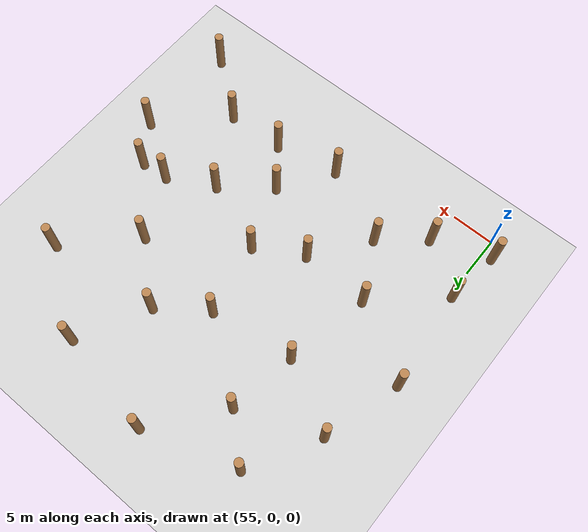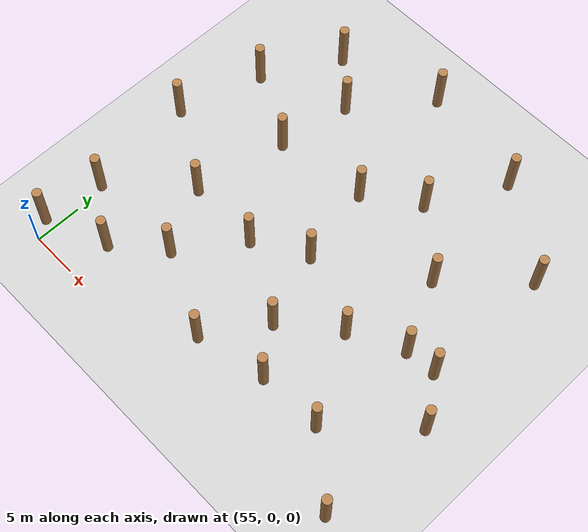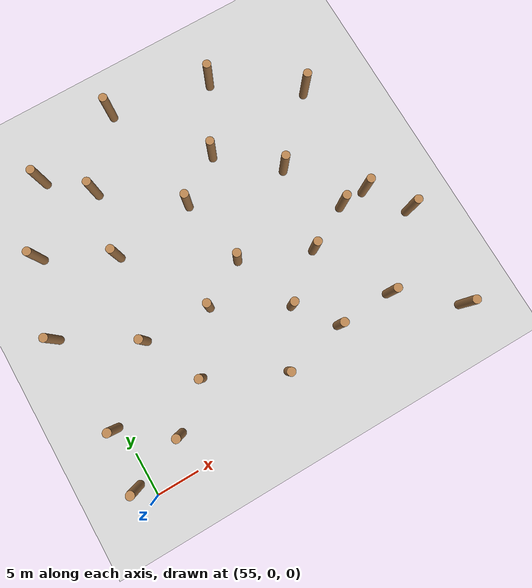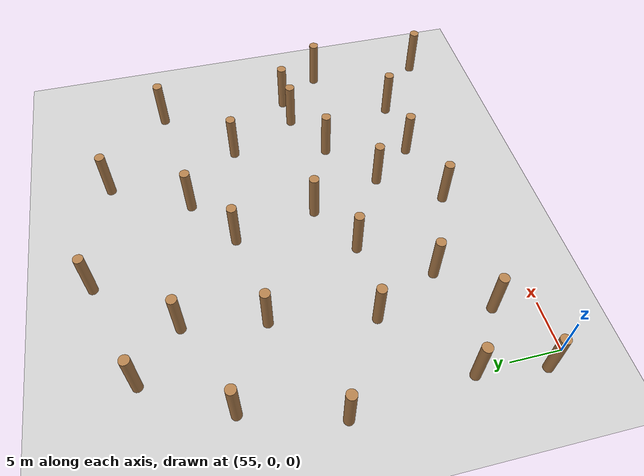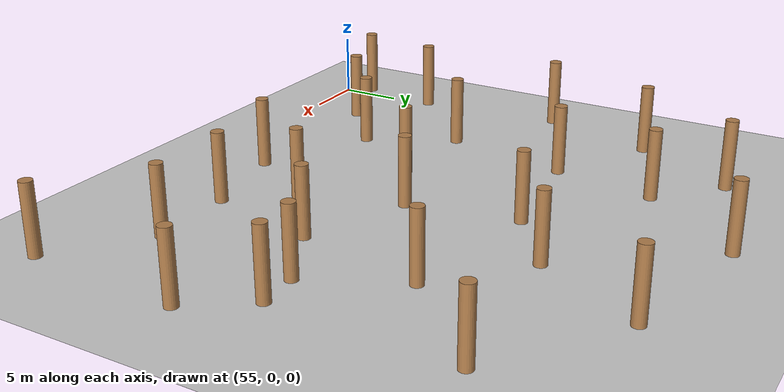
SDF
<sdf version="1.6">
 <world name="default">
  <model name="ground_plane">
   <static>1</static>
   <link name="link">
    <collision name="collision">
     <geometry><plane><normal>0 0 1</normal><size>100 100</size></plane></geometry>
     <surface><friction><ode><mu>100</mu><mu2>50</mu2></ode></friction></surface>
    </collision>
    <visual name="visual">
     <cast_shadows>0</cast_shadows>
     <geometry><plane><normal>0 0 1</normal><size>100 100</size></plane></geometry>
     <material>
      <script><uri>file://media/materials/scripts/gazebo.material</uri><name>Gazebo/Grey</name></script>
     </material>
    </visual>
   </link>
  </model>
  <model name="WoodPillars_3">
   <link name="link">
    <inertial>
     <mass>1</mass>
     <inertia><ixx>0.145833</ixx><ixy>0</ixy><ixz>0</ixz><iyy>0.145833</iyy><iyz>0</iyz><izz>0.125</izz></inertia>
    </inertial>
    <visual name="visual">
     <geometry><cylinder><radius>0.5</radius><length>5.50507</length></cylinder></geometry>
     <material>
      <script><name>Gazebo/Wood</name><uri>file://media/materials/scripts/gazebo.material</uri></script>
     </material>
    </visual>
    <collision name="collision">
     <geometry><cylinder><radius>0.5</radius><length>5.50507</length></cylinder></geometry>
     <surface>
      <friction>
       <ode><mu>1</mu><mu2>1</mu2><fdir1>0 0 0</fdir1><slip1>0</slip1><slip2>0</slip2></ode>
       <torsional>
        <coefficient>1</coefficient>
        <patch_radius>0</patch_radius>
        <surface_radius>0</surface_radius>
        <use_patch_radius>1</use_patch_radius>
        <ode><slip>0</slip></ode>
       </torsional>
      </friction>
      <bounce><restitution_coefficient>0</restitution_coefficient><threshold>1e+06</threshold></bounce>
      <contact>
       <collide_without_contact>0</collide_without_contact>
       <collide_without_contact_bitmask>1</collide_without_contact_bitmask>
       <collide_bitmask>1</collide_bitmask>
       <ode>
        <soft_cfm>0</soft_cfm>
        <soft_erp>0.2</soft_erp>
        <kp>1e+13</kp>
        <kd>1</kd>
        <max_vel>0.01</max_vel>
        <min_depth>0</min_depth>
       </ode>
       <bullet>
        <split_impulse>1</split_impulse>
        <split_impulse_penetration_threshold>-0.01</split_impulse_penetration_threshold>
        <soft_cfm>0</soft_cfm>
        <soft_erp>0.2</soft_erp>
        <kp>1e+13</kp>
        <kd>1</kd>
       </bullet>
      </contact>
     </surface>
    </collision>
   </link>
   <link name="link_clone">
    <inertial>
     <mass>1</mass>
     <inertia><ixx>0.145833</ixx><ixy>0</ixy><ixz>0</ixz><iyy>0.145833</iyy><iyz>0</iyz><izz>0.125</izz></inertia>
    </inertial>
    <pose>17.6954 -2.91348 -2e-06 0 -0 -0.001289</pose>
    <visual name="visual">
     <geometry><cylinder><radius>0.5</radius><length>5.50507</length></cylinder></geometry>
     <material>
      <script><name>Gazebo/Wood</name><uri>file://media/materials/scripts/gazebo.material</uri></script>
      <shader type="pixel"/>
     </material>
    </visual>
    <collision name="collision">
     <geometry><cylinder><radius>0.5</radius><length>5.50507</length></cylinder></geometry>
     <surface>
      <friction>
       <ode><mu>1</mu><mu2>1</mu2><fdir1>0 0 0</fdir1><slip1>0</slip1><slip2>0</slip2></ode>
       <torsional>
        <coefficient>1</coefficient>
        <patch_radius>0</patch_radius>
        <surface_radius>0</surface_radius>
        <use_patch_radius>1</use_patch_radius>
        <ode><slip>0</slip></ode>
       </torsional>
      </friction>
      <bounce><restitution_coefficient>0</restitution_coefficient><threshold>1e+06</threshold></bounce>
      <contact>
       <collide_without_contact>0</collide_without_contact>
       <collide_without_contact_bitmask>1</collide_without_contact_bitmask>
       <collide_bitmask>1</collide_bitmask>
       <ode>
        <soft_cfm>0</soft_cfm>
        <soft_erp>0.2</soft_erp>
        <kp>1e+13</kp>
        <kd>1</kd>
        <max_vel>0.01</max_vel>
        <min_depth>0</min_depth>
       </ode>
       <bullet>
        <split_impulse>1</split_impulse>
        <split_impulse_penetration_threshold>-0.01</split_impulse_penetration_threshold>
        <soft_cfm>0</soft_cfm>
        <soft_erp>0.2</soft_erp>
        <kp>1e+13</kp>
        <kd>1</kd>
       </bullet>
      </contact>
     </surface>
    </collision>
   </link>
   <link name="link_clone_12">
    <inertial>
     <mass>1</mass>
     <inertia><ixx>0.145833</ixx><ixy>0</ixy><ixz>0</ixz><iyy>0.145833</iyy><iyz>0</iyz><izz>0.125</izz></inertia>
    </inertial>
    <pose>36.6063 2.3916 -3e-06 0 -0 -0.001289</pose>
    <visual name="visual">
     <geometry><cylinder><radius>0.5</radius><length>5.50507</length></cylinder></geometry>
     <material>
      <script><name>Gazebo/Wood</name><uri>file://media/materials/scripts/gazebo.material</uri></script>
      <shader type="pixel"/>
     </material>
    </visual>
    <collision name="collision">
     <geometry><cylinder><radius>0.5</radius><length>5.50507</length></cylinder></geometry>
     <surface>
      <friction>
       <ode><mu>1</mu><mu2>1</mu2><fdir1>0 0 0</fdir1><slip1>0</slip1><slip2>0</slip2></ode>
       <torsional>
        <coefficient>1</coefficient>
        <patch_radius>0</patch_radius>
        <surface_radius>0</surface_radius>
        <use_patch_radius>1</use_patch_radius>
        <ode><slip>0</slip></ode>
       </torsional>
      </friction>
      <bounce><restitution_coefficient>0</restitution_coefficient><threshold>1e+06</threshold></bounce>
      <contact>
       <collide_without_contact>0</collide_without_contact>
       <collide_without_contact_bitmask>1</collide_without_contact_bitmask>
       <collide_bitmask>1</collide_bitmask>
       <ode>
        <soft_cfm>0</soft_cfm>
        <soft_erp>0.2</soft_erp>
        <kp>1e+13</kp>
        <kd>1</kd>
        <max_vel>0.01</max_vel>
        <min_depth>0</min_depth>
       </ode>
       <bullet>
        <split_impulse>1</split_impulse>
        <split_impulse_penetration_threshold>-0.01</split_impulse_penetration_threshold>
        <soft_cfm>0</soft_cfm>
        <soft_erp>0.2</soft_erp>
        <kp>1e+13</kp>
        <kd>1</kd>
       </bullet>
      </contact>
     </surface>
    </collision>
   </link>
   <link name="link_clone_13">
    <inertial>
     <mass>1</mass>
     <inertia><ixx>0.145833</ixx><ixy>0</ixy><ixz>0</ixz><iyy>0.145833</iyy><iyz>0</iyz><izz>0.125</izz></inertia>
    </inertial>
    <pose>32.2715 -23.3528 -3e-06 0 -0 -0.001289</pose>
    <visual name="visual">
     <geometry><cylinder><radius>0.5</radius><length>5.50507</length></cylinder></geometry>
     <material>
      <script><name>Gazebo/Wood</name><uri>file://media/materials/scripts/gazebo.material</uri></script>
      <shader type="pixel"/>
     </material>
    </visual>
    <collision name="collision">
     <geometry><cylinder><radius>0.5</radius><length>5.50507</length></cylinder></geometry>
     <surface>
      <friction>
       <ode><mu>1</mu><mu2>1</mu2><fdir1>0 0 0</fdir1><slip1>0</slip1><slip2>0</slip2></ode>
       <torsional>
        <coefficient>1</coefficient>
        <patch_radius>0</patch_radius>
        <surface_radius>0</surface_radius>
        <use_patch_radius>1</use_patch_radius>
        <ode><slip>0</slip></ode>
       </torsional>
      </friction>
      <bounce><restitution_coefficient>0</restitution_coefficient><threshold>1e+06</threshold></bounce>
      <contact>
       <collide_without_contact>0</collide_without_contact>
       <collide_without_contact_bitmask>1</collide_without_contact_bitmask>
       <collide_bitmask>1</collide_bitmask>
       <ode>
        <soft_cfm>0</soft_cfm>
        <soft_erp>0.2</soft_erp>
        <kp>1e+13</kp>
        <kd>1</kd>
        <max_vel>0.01</max_vel>
        <min_depth>0</min_depth>
       </ode>
       <bullet>
        <split_impulse>1</split_impulse>
        <split_impulse_penetration_threshold>-0.01</split_impulse_penetration_threshold>
        <soft_cfm>0</soft_cfm>
        <soft_erp>0.2</soft_erp>
        <kp>1e+13</kp>
        <kd>1</kd>
       </bullet>
      </contact>
     </surface>
    </collision>
   </link>
   <link name="link_clone_14">
    <inertial>
     <mass>1</mass>
     <inertia><ixx>0.145833</ixx><ixy>0</ixy><ixz>0</ixz><iyy>0.145833</iyy><iyz>0</iyz><izz>0.125</izz></inertia>
    </inertial>
    <pose>9.31461 -20.9997 -1e-06 0 -0 -0.001289</pose>
    <visual name="visual">
     <geometry><cylinder><radius>0.5</radius><length>5.50507</length></cylinder></geometry>
     <material>
      <script><name>Gazebo/Wood</name><uri>file://media/materials/scripts/gazebo.material</uri></script>
      <shader type="pixel"/>
     </material>
    </visual>
    <collision name="collision">
     <geometry><cylinder><radius>0.5</radius><length>5.50507</length></cylinder></geometry>
     <surface>
      <friction>
       <ode><mu>1</mu><mu2>1</mu2><fdir1>0 0 0</fdir1><slip1>0</slip1><slip2>0</slip2></ode>
       <torsional>
        <coefficient>1</coefficient>
        <patch_radius>0</patch_radius>
        <surface_radius>0</surface_radius>
        <use_patch_radius>1</use_patch_radius>
        <ode><slip>0</slip></ode>
       </torsional>
      </friction>
      <bounce><restitution_coefficient>0</restitution_coefficient><threshold>1e+06</threshold></bounce>
      <contact>
       <collide_without_contact>0</collide_without_contact>
       <collide_without_contact_bitmask>1</collide_without_contact_bitmask>
       <collide_bitmask>1</collide_bitmask>
       <ode>
        <soft_cfm>0</soft_cfm>
        <soft_erp>0.2</soft_erp>
        <kp>1e+13</kp>
        <kd>1</kd>
        <max_vel>0.01</max_vel>
        <min_depth>0</min_depth>
       </ode>
       <bullet>
        <split_impulse>1</split_impulse>
        <split_impulse_penetration_threshold>-0.01</split_impulse_penetration_threshold>
        <soft_cfm>0</soft_cfm>
        <soft_erp>0.2</soft_erp>
        <kp>1e+13</kp>
        <kd>1</kd>
       </bullet>
      </contact>
     </surface>
    </collision>
   </link>
   <link name="link_clone_15">
    <inertial>
     <mass>1</mass>
     <inertia><ixx>0.145833</ixx><ixy>0</ixy><ixz>0</ixz><iyy>0.145833</iyy><iyz>0</iyz><izz>0.125</izz></inertia>
    </inertial>
    <pose>17.9894 -25.1945 -2e-06 0 -0 -0.001289</pose>
    <visual name="visual">
     <geometry><cylinder><radius>0.5</radius><length>5.50507</length></cylinder></geometry>
     <material>
      <script><name>Gazebo/Wood</name><uri>file://media/materials/scripts/gazebo.material</uri></script>
      <shader type="pixel"/>
     </material>
    </visual>
    <collision name="collision">
     <geometry><cylinder><radius>0.5</radius><length>5.50507</length></cylinder></geometry>
     <surface>
      <friction>
       <ode><mu>1</mu><mu2>1</mu2><fdir1>0 0 0</fdir1><slip1>0</slip1><slip2>0</slip2></ode>
       <torsional>
        <coefficient>1</coefficient>
        <patch_radius>0</patch_radius>
        <surface_radius>0</surface_radius>
        <use_patch_radius>1</use_patch_radius>
        <ode><slip>0</slip></ode>
       </torsional>
      </friction>
      <bounce><restitution_coefficient>0</restitution_coefficient><threshold>1e+06</threshold></bounce>
      <contact>
       <collide_without_contact>0</collide_without_contact>
       <collide_without_contact_bitmask>1</collide_without_contact_bitmask>
       <collide_bitmask>1</collide_bitmask>
       <ode>
        <soft_cfm>0</soft_cfm>
        <soft_erp>0.2</soft_erp>
        <kp>1e+13</kp>
        <kd>1</kd>
        <max_vel>0.01</max_vel>
        <min_depth>0</min_depth>
       </ode>
       <bullet>
        <split_impulse>1</split_impulse>
        <split_impulse_penetration_threshold>-0.01</split_impulse_penetration_threshold>
        <soft_cfm>0</soft_cfm>
        <soft_erp>0.2</soft_erp>
        <kp>1e+13</kp>
        <kd>1</kd>
       </bullet>
      </contact>
     </surface>
    </collision>
   </link>
   <link name="link_clone_16">
    <inertial>
     <mass>1</mass>
     <inertia><ixx>0.145833</ixx><ixy>0</ixy><ixz>0</ixz><iyy>0.145833</iyy><iyz>0</iyz><izz>0.125</izz></inertia>
    </inertial>
    <pose>32.9662 -11.9429 -3e-06 0 -0 -0.001289</pose>
    <visual name="visual">
     <geometry><cylinder><radius>0.5</radius><length>5.50507</length></cylinder></geometry>
     <material>
      <script><name>Gazebo/Wood</name><uri>file://media/materials/scripts/gazebo.material</uri></script>
      <shader type="pixel"/>
     </material>
    </visual>
    <collision name="collision">
     <geometry><cylinder><radius>0.5</radius><length>5.50507</length></cylinder></geometry>
     <surface>
      <friction>
       <ode><mu>1</mu><mu2>1</mu2><fdir1>0 0 0</fdir1><slip1>0</slip1><slip2>0</slip2></ode>
       <torsional>
        <coefficient>1</coefficient>
        <patch_radius>0</patch_radius>
        <surface_radius>0</surface_radius>
        <use_patch_radius>1</use_patch_radius>
        <ode><slip>0</slip></ode>
       </torsional>
      </friction>
      <bounce><restitution_coefficient>0</restitution_coefficient><threshold>1e+06</threshold></bounce>
      <contact>
       <collide_without_contact>0</collide_without_contact>
       <collide_without_contact_bitmask>1</collide_without_contact_bitmask>
       <collide_bitmask>1</collide_bitmask>
       <ode>
        <soft_cfm>0</soft_cfm>
        <soft_erp>0.2</soft_erp>
        <kp>1e+13</kp>
        <kd>1</kd>
        <max_vel>0.01</max_vel>
        <min_depth>0</min_depth>
       </ode>
       <bullet>
        <split_impulse>1</split_impulse>
        <split_impulse_penetration_threshold>-0.01</split_impulse_penetration_threshold>
        <soft_cfm>0</soft_cfm>
        <soft_erp>0.2</soft_erp>
        <kp>1e+13</kp>
        <kd>1</kd>
       </bullet>
      </contact>
     </surface>
    </collision>
   </link>
   <link name="link_clone_17">
    <inertial>
     <mass>1</mass>
     <inertia><ixx>0.145833</ixx><ixy>0</ixy><ixz>0</ixz><iyy>0.145833</iyy><iyz>0</iyz><izz>0.125</izz></inertia>
    </inertial>
    <pose>19.3784 -11.4604 -2e-06 0 -0 -0.001289</pose>
    <visual name="visual">
     <geometry><cylinder><radius>0.5</radius><length>5.50507</length></cylinder></geometry>
     <material>
      <script><name>Gazebo/Wood</name><uri>file://media/materials/scripts/gazebo.material</uri></script>
      <shader type="pixel"/>
     </material>
    </visual>
    <collision name="collision">
     <geometry><cylinder><radius>0.5</radius><length>5.50507</length></cylinder></geometry>
     <surface>
      <friction>
       <ode><mu>1</mu><mu2>1</mu2><fdir1>0 0 0</fdir1><slip1>0</slip1><slip2>0</slip2></ode>
       <torsional>
        <coefficient>1</coefficient>
        <patch_radius>0</patch_radius>
        <surface_radius>0</surface_radius>
        <use_patch_radius>1</use_patch_radius>
        <ode><slip>0</slip></ode>
       </torsional>
      </friction>
      <bounce><restitution_coefficient>0</restitution_coefficient><threshold>1e+06</threshold></bounce>
      <contact>
       <collide_without_contact>0</collide_without_contact>
       <collide_without_contact_bitmask>1</collide_without_contact_bitmask>
       <collide_bitmask>1</collide_bitmask>
       <ode>
        <soft_cfm>0</soft_cfm>
        <soft_erp>0.2</soft_erp>
        <kp>1e+13</kp>
        <kd>1</kd>
        <max_vel>0.01</max_vel>
        <min_depth>0</min_depth>
       </ode>
       <bullet>
        <split_impulse>1</split_impulse>
        <split_impulse_penetration_threshold>-0.01</split_impulse_penetration_threshold>
        <soft_cfm>0</soft_cfm>
        <soft_erp>0.2</soft_erp>
        <kp>1e+13</kp>
        <kd>1</kd>
       </bullet>
      </contact>
     </surface>
    </collision>
   </link>
   <link name="link_clone_18">
    <inertial>
     <mass>1</mass>
     <inertia><ixx>0.145833</ixx><ixy>0</ixy><ixz>0</ixz><iyy>0.145833</iyy><iyz>0</iyz><izz>0.125</izz></inertia>
    </inertial>
    <pose>9.1573 3.67739 -1e-06 0 -0 -0.001289</pose>
    <visual name="visual">
     <geometry><cylinder><radius>0.5</radius><length>5.50507</length></cylinder></geometry>
     <material>
      <script><name>Gazebo/Wood</name><uri>file://media/materials/scripts/gazebo.material</uri></script>
      <shader type="pixel"/>
     </material>
    </visual>
    <collision name="collision">
     <geometry><cylinder><radius>0.5</radius><length>5.50507</length></cylinder></geometry>
     <surface>
      <friction>
       <ode><mu>1</mu><mu2>1</mu2><fdir1>0 0 0</fdir1><slip1>0</slip1><slip2>0</slip2></ode>
       <torsional>
        <coefficient>1</coefficient>
        <patch_radius>0</patch_radius>
        <surface_radius>0</surface_radius>
        <use_patch_radius>1</use_patch_radius>
        <ode><slip>0</slip></ode>
       </torsional>
      </friction>
      <bounce><restitution_coefficient>0</restitution_coefficient><threshold>1e+06</threshold></bounce>
      <contact>
       <collide_without_contact>0</collide_without_contact>
       <collide_without_contact_bitmask>1</collide_without_contact_bitmask>
       <collide_bitmask>1</collide_bitmask>
       <ode>
        <soft_cfm>0</soft_cfm>
        <soft_erp>0.2</soft_erp>
        <kp>1e+13</kp>
        <kd>1</kd>
        <max_vel>0.01</max_vel>
        <min_depth>0</min_depth>
       </ode>
       <bullet>
        <split_impulse>1</split_impulse>
        <split_impulse_penetration_threshold>-0.01</split_impulse_penetration_threshold>
        <soft_cfm>0</soft_cfm>
        <soft_erp>0.2</soft_erp>
        <kp>1e+13</kp>
        <kd>1</kd>
       </bullet>
      </contact>
     </surface>
    </collision>
   </link>
   <link name="link_clone_20">
    <inertial>
     <mass>1</mass>
     <inertia><ixx>0.145833</ixx><ixy>0</ixy><ixz>0</ixz><iyy>0.145833</iyy><iyz>0</iyz><izz>0.125</izz></inertia>
    </inertial>
    <pose>-2.64423 -9.12396 -0 0 -0 -0.001289</pose>
    <visual name="visual">
     <geometry><cylinder><radius>0.5</radius><length>5.50507</length></cylinder></geometry>
     <material>
      <script><name>Gazebo/Wood</name><uri>file://media/materials/scripts/gazebo.material</uri></script>
      <shader type="pixel"/>
     </material>
    </visual>
    <collision name="collision">
     <geometry><cylinder><radius>0.5</radius><length>5.50507</length></cylinder></geometry>
     <surface>
      <friction>
       <ode><mu>1</mu><mu2>1</mu2><fdir1>0 0 0</fdir1><slip1>0</slip1><slip2>0</slip2></ode>
       <torsional>
        <coefficient>1</coefficient>
        <patch_radius>0</patch_radius>
        <surface_radius>0</surface_radius>
        <use_patch_radius>1</use_patch_radius>
        <ode><slip>0</slip></ode>
       </torsional>
      </friction>
      <bounce><restitution_coefficient>0</restitution_coefficient><threshold>1e+06</threshold></bounce>
      <contact>
       <collide_without_contact>0</collide_without_contact>
       <collide_without_contact_bitmask>1</collide_without_contact_bitmask>
       <collide_bitmask>1</collide_bitmask>
       <ode>
        <soft_cfm>0</soft_cfm>
        <soft_erp>0.2</soft_erp>
        <kp>1e+13</kp>
        <kd>1</kd>
        <max_vel>0.01</max_vel>
        <min_depth>0</min_depth>
       </ode>
       <bullet>
        <split_impulse>1</split_impulse>
        <split_impulse_penetration_threshold>-0.01</split_impulse_penetration_threshold>
        <soft_cfm>0</soft_cfm>
        <soft_erp>0.2</soft_erp>
        <kp>1e+13</kp>
        <kd>1</kd>
       </bullet>
      </contact>
     </surface>
    </collision>
   </link>
   <link name="link_clone_21">
    <inertial>
     <mass>1</mass>
     <inertia><ixx>0.145833</ixx><ixy>0</ixy><ixz>0</ixz><iyy>0.145833</iyy><iyz>0</iyz><izz>0.125</izz></inertia>
    </inertial>
    <pose>15.2748 11.406 -1e-06 0 -0 -0.001289</pose>
    <visual name="visual">
     <geometry><cylinder><radius>0.5</radius><length>5.50507</length></cylinder></geometry>
     <material>
      <script><name>Gazebo/Wood</name><uri>file://media/materials/scripts/gazebo.material</uri></script>
      <shader type="pixel"/>
     </material>
    </visual>
    <collision name="collision">
     <geometry><cylinder><radius>0.5</radius><length>5.50507</length></cylinder></geometry>
     <surface>
      <friction>
       <ode><mu>1</mu><mu2>1</mu2><fdir1>0 0 0</fdir1><slip1>0</slip1><slip2>0</slip2></ode>
       <torsional>
        <coefficient>1</coefficient>
        <patch_radius>0</patch_radius>
        <surface_radius>0</surface_radius>
        <use_patch_radius>1</use_patch_radius>
        <ode><slip>0</slip></ode>
       </torsional>
      </friction>
      <bounce><restitution_coefficient>0</restitution_coefficient><threshold>1e+06</threshold></bounce>
      <contact>
       <collide_without_contact>0</collide_without_contact>
       <collide_without_contact_bitmask>1</collide_without_contact_bitmask>
       <collide_bitmask>1</collide_bitmask>
       <ode>
        <soft_cfm>0</soft_cfm>
        <soft_erp>0.2</soft_erp>
        <kp>1e+13</kp>
        <kd>1</kd>
        <max_vel>0.01</max_vel>
        <min_depth>0</min_depth>
       </ode>
       <bullet>
        <split_impulse>1</split_impulse>
        <split_impulse_penetration_threshold>-0.01</split_impulse_penetration_threshold>
        <soft_cfm>0</soft_cfm>
        <soft_erp>0.2</soft_erp>
        <kp>1e+13</kp>
        <kd>1</kd>
       </bullet>
      </contact>
     </surface>
    </collision>
   </link>
   <link name="link_clone_22">
    <inertial>
     <mass>1</mass>
     <inertia><ixx>0.145833</ixx><ixy>0</ixy><ixz>0</ixz><iyy>0.145833</iyy><iyz>0</iyz><izz>0.125</izz></inertia>
    </inertial>
    <pose>27.313 9.05961 -2e-06 0 -0 -0.001289</pose>
    <visual name="visual">
     <geometry><cylinder><radius>0.5</radius><length>5.50507</length></cylinder></geometry>
     <material>
      <script><name>Gazebo/Wood</name><uri>file://media/materials/scripts/gazebo.material</uri></script>
      <shader type="pixel"/>
     </material>
    </visual>
    <collision name="collision">
     <geometry><cylinder><radius>0.5</radius><length>5.50507</length></cylinder></geometry>
     <surface>
      <friction>
       <ode><mu>1</mu><mu2>1</mu2><fdir1>0 0 0</fdir1><slip1>0</slip1><slip2>0</slip2></ode>
       <torsional>
        <coefficient>1</coefficient>
        <patch_radius>0</patch_radius>
        <surface_radius>0</surface_radius>
        <use_patch_radius>1</use_patch_radius>
        <ode><slip>0</slip></ode>
       </torsional>
      </friction>
      <bounce><restitution_coefficient>0</restitution_coefficient><threshold>1e+06</threshold></bounce>
      <contact>
       <collide_without_contact>0</collide_without_contact>
       <collide_without_contact_bitmask>1</collide_without_contact_bitmask>
       <collide_bitmask>1</collide_bitmask>
       <ode>
        <soft_cfm>0</soft_cfm>
        <soft_erp>0.2</soft_erp>
        <kp>1e+13</kp>
        <kd>1</kd>
        <max_vel>0.01</max_vel>
        <min_depth>0</min_depth>
       </ode>
       <bullet>
        <split_impulse>1</split_impulse>
        <split_impulse_penetration_threshold>-0.01</split_impulse_penetration_threshold>
        <soft_cfm>0</soft_cfm>
        <soft_erp>0.2</soft_erp>
        <kp>1e+13</kp>
        <kd>1</kd>
       </bullet>
      </contact>
     </surface>
    </collision>
   </link>
   <link name="link_clone_23">
    <inertial>
     <mass>1</mass>
     <inertia><ixx>0.145833</ixx><ixy>0</ixy><ixz>0</ixz><iyy>0.145833</iyy><iyz>0</iyz><izz>0.125</izz></inertia>
    </inertial>
    <pose>29.5176 -4.71623 -3e-06 0 -0 -0.001289</pose>
    <visual name="visual">
     <geometry><cylinder><radius>0.5</radius><length>5.50507</length></cylinder></geometry>
     <material>
      <script><name>Gazebo/Wood</name><uri>file://media/materials/scripts/gazebo.material</uri></script>
      <shader type="pixel"/>
     </material>
    </visual>
    <collision name="collision">
     <geometry><cylinder><radius>0.5</radius><length>5.50507</length></cylinder></geometry>
     <surface>
      <friction>
       <ode><mu>1</mu><mu2>1</mu2><fdir1>0 0 0</fdir1><slip1>0</slip1><slip2>0</slip2></ode>
       <torsional>
        <coefficient>1</coefficient>
        <patch_radius>0</patch_radius>
        <surface_radius>0</surface_radius>
        <use_patch_radius>1</use_patch_radius>
        <ode><slip>0</slip></ode>
       </torsional>
      </friction>
      <bounce><restitution_coefficient>0</restitution_coefficient><threshold>1e+06</threshold></bounce>
      <contact>
       <collide_without_contact>0</collide_without_contact>
       <collide_without_contact_bitmask>1</collide_without_contact_bitmask>
       <collide_bitmask>1</collide_bitmask>
       <ode>
        <soft_cfm>0</soft_cfm>
        <soft_erp>0.2</soft_erp>
        <kp>1e+13</kp>
        <kd>1</kd>
        <max_vel>0.01</max_vel>
        <min_depth>0</min_depth>
       </ode>
       <bullet>
        <split_impulse>1</split_impulse>
        <split_impulse_penetration_threshold>-0.01</split_impulse_penetration_threshold>
        <soft_cfm>0</soft_cfm>
        <soft_erp>0.2</soft_erp>
        <kp>1e+13</kp>
        <kd>1</kd>
       </bullet>
      </contact>
     </surface>
    </collision>
   </link>
   <link name="link_clone_24">
    <inertial>
     <mass>1</mass>
     <inertia><ixx>0.145833</ixx><ixy>0</ixy><ixz>0</ixz><iyy>0.145833</iyy><iyz>0</iyz><izz>0.125</izz></inertia>
    </inertial>
    <pose>7.84688 -4.26113 -1e-06 0 -0 -0.001289</pose>
    <visual name="visual">
     <geometry><cylinder><radius>0.5</radius><length>5.50507</length></cylinder></geometry>
     <material>
      <script><name>Gazebo/Wood</name><uri>file://media/materials/scripts/gazebo.material</uri></script>
      <shader type="pixel"/>
     </material>
    </visual>
    <collision name="collision">
     <geometry><cylinder><radius>0.5</radius><length>5.50507</length></cylinder></geometry>
     <surface>
      <friction>
       <ode><mu>1</mu><mu2>1</mu2><fdir1>0 0 0</fdir1><slip1>0</slip1><slip2>0</slip2></ode>
       <torsional>
        <coefficient>1</coefficient>
        <patch_radius>0</patch_radius>
        <surface_radius>0</surface_radius>
        <use_patch_radius>1</use_patch_radius>
        <ode><slip>0</slip></ode>
       </torsional>
      </friction>
      <bounce><restitution_coefficient>0</restitution_coefficient><threshold>1e+06</threshold></bounce>
      <contact>
       <collide_without_contact>0</collide_without_contact>
       <collide_without_contact_bitmask>1</collide_without_contact_bitmask>
       <collide_bitmask>1</collide_bitmask>
       <ode>
        <soft_cfm>0</soft_cfm>
        <soft_erp>0.2</soft_erp>
        <kp>1e+13</kp>
        <kd>1</kd>
        <max_vel>0.01</max_vel>
        <min_depth>0</min_depth>
       </ode>
       <bullet>
        <split_impulse>1</split_impulse>
        <split_impulse_penetration_threshold>-0.01</split_impulse_penetration_threshold>
        <soft_cfm>0</soft_cfm>
        <soft_erp>0.2</soft_erp>
        <kp>1e+13</kp>
        <kd>1</kd>
       </bullet>
      </contact>
     </surface>
    </collision>
   </link>
   <link name="link_clone_26">
    <inertial>
     <mass>1</mass>
     <inertia><ixx>0.145833</ixx><ixy>0</ixy><ixz>0</ixz><iyy>0.145833</iyy><iyz>0</iyz><izz>0.125</izz></inertia>
    </inertial>
    <pose>13.9187 -14.5508 -1e-06 0 -0 -0.001289</pose>
    <visual name="visual">
     <geometry><cylinder><radius>0.5</radius><length>5.50507</length></cylinder></geometry>
     <material>
      <script><name>Gazebo/Wood</name><uri>file://media/materials/scripts/gazebo.material</uri></script>
      <shader type="pixel"/>
     </material>
    </visual>
    <collision name="collision">
     <geometry><cylinder><radius>0.5</radius><length>5.50507</length></cylinder></geometry>
     <surface>
      <friction>
       <ode><mu>1</mu><mu2>1</mu2><fdir1>0 0 0</fdir1><slip1>0</slip1><slip2>0</slip2></ode>
       <torsional>
        <coefficient>1</coefficient>
        <patch_radius>0</patch_radius>
        <surface_radius>0</surface_radius>
        <use_patch_radius>1</use_patch_radius>
        <ode><slip>0</slip></ode>
       </torsional>
      </friction>
      <bounce><restitution_coefficient>0</restitution_coefficient><threshold>1e+06</threshold></bounce>
      <contact>
       <collide_without_contact>0</collide_without_contact>
       <collide_without_contact_bitmask>1</collide_without_contact_bitmask>
       <collide_bitmask>1</collide_bitmask>
       <ode>
        <soft_cfm>0</soft_cfm>
        <soft_erp>0.2</soft_erp>
        <kp>1e+13</kp>
        <kd>1</kd>
        <max_vel>0.01</max_vel>
        <min_depth>0</min_depth>
       </ode>
       <bullet>
        <split_impulse>1</split_impulse>
        <split_impulse_penetration_threshold>-0.01</split_impulse_penetration_threshold>
        <soft_cfm>0</soft_cfm>
        <soft_erp>0.2</soft_erp>
        <kp>1e+13</kp>
        <kd>1</kd>
       </bullet>
      </contact>
     </surface>
    </collision>
   </link>
   <link name="link_clone_27">
    <inertial>
     <mass>1</mass>
     <inertia><ixx>0.145833</ixx><ixy>0</ixy><ixz>0</ixz><iyy>0.145833</iyy><iyz>0</iyz><izz>0.125</izz></inertia>
    </inertial>
    <pose>4.38632 -25.0605 -1e-06 0 -0 -0.001289</pose>
    <visual name="visual">
     <geometry><cylinder><radius>0.5</radius><length>5.50507</length></cylinder></geometry>
     <material>
      <script><name>Gazebo/Wood</name><uri>file://media/materials/scripts/gazebo.material</uri></script>
      <shader type="pixel"/>
     </material>
    </visual>
    <collision name="collision">
     <geometry><cylinder><radius>0.5</radius><length>5.50507</length></cylinder></geometry>
     <surface>
      <friction>
       <ode><mu>1</mu><mu2>1</mu2><fdir1>0 0 0</fdir1><slip1>0</slip1><slip2>0</slip2></ode>
       <torsional>
        <coefficient>1</coefficient>
        <patch_radius>0</patch_radius>
        <surface_radius>0</surface_radius>
        <use_patch_radius>1</use_patch_radius>
        <ode><slip>0</slip></ode>
       </torsional>
      </friction>
      <bounce><restitution_coefficient>0</restitution_coefficient><threshold>1e+06</threshold></bounce>
      <contact>
       <collide_without_contact>0</collide_without_contact>
       <collide_without_contact_bitmask>1</collide_without_contact_bitmask>
       <collide_bitmask>1</collide_bitmask>
       <ode>
        <soft_cfm>0</soft_cfm>
        <soft_erp>0.2</soft_erp>
        <kp>1e+13</kp>
        <kd>1</kd>
        <max_vel>0.01</max_vel>
        <min_depth>0</min_depth>
       </ode>
       <bullet>
        <split_impulse>1</split_impulse>
        <split_impulse_penetration_threshold>-0.01</split_impulse_penetration_threshold>
        <soft_cfm>0</soft_cfm>
        <soft_erp>0.2</soft_erp>
        <kp>1e+13</kp>
        <kd>1</kd>
       </bullet>
      </contact>
     </surface>
    </collision>
   </link>
   <link name="link_clone_28">
    <inertial>
     <mass>1</mass>
     <inertia><ixx>0.145833</ixx><ixy>0</ixy><ixz>0</ixz><iyy>0.145833</iyy><iyz>0</iyz><izz>0.125</izz></inertia>
    </inertial>
    <pose>27.5353 -14.766 -3e-06 0 -0 -0.001289</pose>
    <visual name="visual">
     <geometry><cylinder><radius>0.5</radius><length>5.50507</length></cylinder></geometry>
     <material>
      <script><name>Gazebo/Wood</name><uri>file://media/materials/scripts/gazebo.material</uri></script>
      <shader type="pixel"/>
     </material>
    </visual>
    <collision name="collision">
     <geometry><cylinder><radius>0.5</radius><length>5.50507</length></cylinder></geometry>
     <surface>
      <friction>
       <ode><mu>1</mu><mu2>1</mu2><fdir1>0 0 0</fdir1><slip1>0</slip1><slip2>0</slip2></ode>
       <torsional>
        <coefficient>1</coefficient>
        <patch_radius>0</patch_radius>
        <surface_radius>0</surface_radius>
        <use_patch_radius>1</use_patch_radius>
        <ode><slip>0</slip></ode>
       </torsional>
      </friction>
      <bounce><restitution_coefficient>0</restitution_coefficient><threshold>1e+06</threshold></bounce>
      <contact>
       <collide_without_contact>0</collide_without_contact>
       <collide_without_contact_bitmask>1</collide_without_contact_bitmask>
       <collide_bitmask>1</collide_bitmask>
       <ode>
        <soft_cfm>0</soft_cfm>
        <soft_erp>0.2</soft_erp>
        <kp>1e+13</kp>
        <kd>1</kd>
        <max_vel>0.01</max_vel>
        <min_depth>0</min_depth>
       </ode>
       <bullet>
        <split_impulse>1</split_impulse>
        <split_impulse_penetration_threshold>-0.01</split_impulse_penetration_threshold>
        <soft_cfm>0</soft_cfm>
        <soft_erp>0.2</soft_erp>
        <kp>1e+13</kp>
        <kd>1</kd>
       </bullet>
      </contact>
     </surface>
    </collision>
   </link>
   <link name="link_clone_29">
    <inertial>
     <mass>1</mass>
     <inertia><ixx>0.145833</ixx><ixy>0</ixy><ixz>0</ixz><iyy>0.145833</iyy><iyz>0</iyz><izz>0.125</izz></inertia>
    </inertial>
    <pose>39.4401 -16.2696 -4e-06 0 -0 -0.001289</pose>
    <visual name="visual">
     <geometry><cylinder><radius>0.5</radius><length>5.50507</length></cylinder></geometry>
     <material>
      <script><name>Gazebo/Wood</name><uri>file://media/materials/scripts/gazebo.material</uri></script>
      <shader type="pixel"/>
     </material>
    </visual>
    <collision name="collision">
     <geometry><cylinder><radius>0.5</radius><length>5.50507</length></cylinder></geometry>
     <surface>
      <friction>
       <ode><mu>1</mu><mu2>1</mu2><fdir1>0 0 0</fdir1><slip1>0</slip1><slip2>0</slip2></ode>
       <torsional>
        <coefficient>1</coefficient>
        <patch_radius>0</patch_radius>
        <surface_radius>0</surface_radius>
        <use_patch_radius>1</use_patch_radius>
        <ode><slip>0</slip></ode>
       </torsional>
      </friction>
      <bounce><restitution_coefficient>0</restitution_coefficient><threshold>1e+06</threshold></bounce>
      <contact>
       <collide_without_contact>0</collide_without_contact>
       <collide_without_contact_bitmask>1</collide_without_contact_bitmask>
       <collide_bitmask>1</collide_bitmask>
       <ode>
        <soft_cfm>0</soft_cfm>
        <soft_erp>0.2</soft_erp>
        <kp>1e+13</kp>
        <kd>1</kd>
        <max_vel>0.01</max_vel>
        <min_depth>0</min_depth>
       </ode>
       <bullet>
        <split_impulse>1</split_impulse>
        <split_impulse_penetration_threshold>-0.01</split_impulse_penetration_threshold>
        <soft_cfm>0</soft_cfm>
        <soft_erp>0.2</soft_erp>
        <kp>1e+13</kp>
        <kd>1</kd>
       </bullet>
      </contact>
     </surface>
    </collision>
   </link>
   <link name="link_clone_30">
    <inertial>
     <mass>1</mass>
     <inertia><ixx>0.145833</ixx><ixy>0</ixy><ixz>0</ixz><iyy>0.145833</iyy><iyz>0</iyz><izz>0.125</izz></inertia>
    </inertial>
    <pose>4.46339 7.97492 0 0 -0 -0.001289</pose>
    <visual name="visual">
     <geometry><cylinder><radius>0.5</radius><length>5.50507</length></cylinder></geometry>
     <material>
      <script><name>Gazebo/Wood</name><uri>file://media/materials/scripts/gazebo.material</uri></script>
      <shader type="pixel"/>
     </material>
    </visual>
    <collision name="collision">
     <geometry><cylinder><radius>0.5</radius><length>5.50507</length></cylinder></geometry>
     <surface>
      <friction>
       <ode><mu>1</mu><mu2>1</mu2><fdir1>0 0 0</fdir1><slip1>0</slip1><slip2>0</slip2></ode>
       <torsional>
        <coefficient>1</coefficient>
        <patch_radius>0</patch_radius>
        <surface_radius>0</surface_radius>
        <use_patch_radius>1</use_patch_radius>
        <ode><slip>0</slip></ode>
       </torsional>
      </friction>
      <bounce><restitution_coefficient>0</restitution_coefficient><threshold>1e+06</threshold></bounce>
      <contact>
       <collide_without_contact>0</collide_without_contact>
       <collide_without_contact_bitmask>1</collide_without_contact_bitmask>
       <collide_bitmask>1</collide_bitmask>
       <ode>
        <soft_cfm>0</soft_cfm>
        <soft_erp>0.2</soft_erp>
        <kp>1e+13</kp>
        <kd>1</kd>
        <max_vel>0.01</max_vel>
        <min_depth>0</min_depth>
       </ode>
       <bullet>
        <split_impulse>1</split_impulse>
        <split_impulse_penetration_threshold>-0.01</split_impulse_penetration_threshold>
        <soft_cfm>0</soft_cfm>
        <soft_erp>0.2</soft_erp>
        <kp>1e+13</kp>
        <kd>1</kd>
       </bullet>
      </contact>
     </surface>
    </collision>
   </link>
   <link name="link_clone_34">
    <inertial>
     <mass>1</mass>
     <inertia><ixx>0.145833</ixx><ixy>0</ixy><ixz>0</ixz><iyy>0.145833</iyy><iyz>0</iyz><izz>0.125</izz></inertia>
    </inertial>
    <pose>25.4673 -23.5908 -3e-06 0 -0 -0.001289</pose>
    <visual name="visual">
     <geometry><cylinder><radius>0.5</radius><length>5.50507</length></cylinder></geometry>
     <material>
      <script><name>Gazebo/Wood</name><uri>file://media/materials/scripts/gazebo.material</uri></script>
      <shader type="pixel"/>
     </material>
    </visual>
    <collision name="collision">
     <geometry><cylinder><radius>0.5</radius><length>5.50507</length></cylinder></geometry>
     <surface>
      <friction>
       <ode><mu>1</mu><mu2>1</mu2><fdir1>0 0 0</fdir1><slip1>0</slip1><slip2>0</slip2></ode>
       <torsional>
        <coefficient>1</coefficient>
        <patch_radius>0</patch_radius>
        <surface_radius>0</surface_radius>
        <use_patch_radius>1</use_patch_radius>
        <ode><slip>0</slip></ode>
       </torsional>
      </friction>
      <bounce><restitution_coefficient>0</restitution_coefficient><threshold>1e+06</threshold></bounce>
      <contact>
       <collide_without_contact>0</collide_without_contact>
       <collide_without_contact_bitmask>1</collide_without_contact_bitmask>
       <collide_bitmask>1</collide_bitmask>
       <ode>
        <soft_cfm>0</soft_cfm>
        <soft_erp>0.2</soft_erp>
        <kp>1e+13</kp>
        <kd>1</kd>
        <max_vel>0.01</max_vel>
        <min_depth>0</min_depth>
       </ode>
       <bullet>
        <split_impulse>1</split_impulse>
        <split_impulse_penetration_threshold>-0.01</split_impulse_penetration_threshold>
        <soft_cfm>0</soft_cfm>
        <soft_erp>0.2</soft_erp>
        <kp>1e+13</kp>
        <kd>1</kd>
       </bullet>
      </contact>
     </surface>
    </collision>
   </link>
   <link name="link_clone_4">
    <inertial>
     <mass>1</mass>
     <inertia><ixx>0.145833</ixx><ixy>0</ixy><ixz>0</ixz><iyy>0.145833</iyy><iyz>0</iyz><izz>0.125</izz></inertia>
    </inertial>
    <pose>23.1128 0.93751 -2e-06 0 -0 -0.001289</pose>
    <visual name="visual">
     <geometry><cylinder><radius>0.5</radius><length>5.50507</length></cylinder></geometry>
     <material>
      <script><name>Gazebo/Wood</name><uri>file://media/materials/scripts/gazebo.material</uri></script>
      <shader type="pixel"/>
     </material>
    </visual>
    <collision name="collision">
     <geometry><cylinder><radius>0.5</radius><length>5.50507</length></cylinder></geometry>
     <surface>
      <friction>
       <ode><mu>1</mu><mu2>1</mu2><fdir1>0 0 0</fdir1><slip1>0</slip1><slip2>0</slip2></ode>
       <torsional>
        <coefficient>1</coefficient>
        <patch_radius>0</patch_radius>
        <surface_radius>0</surface_radius>
        <use_patch_radius>1</use_patch_radius>
        <ode><slip>0</slip></ode>
       </torsional>
      </friction>
      <bounce><restitution_coefficient>0</restitution_coefficient><threshold>1e+06</threshold></bounce>
      <contact>
       <collide_without_contact>0</collide_without_contact>
       <collide_without_contact_bitmask>1</collide_without_contact_bitmask>
       <collide_bitmask>1</collide_bitmask>
       <ode>
        <soft_cfm>0</soft_cfm>
        <soft_erp>0.2</soft_erp>
        <kp>1e+13</kp>
        <kd>1</kd>
        <max_vel>0.01</max_vel>
        <min_depth>0</min_depth>
       </ode>
       <bullet>
        <split_impulse>1</split_impulse>
        <split_impulse_penetration_threshold>-0.01</split_impulse_penetration_threshold>
        <soft_cfm>0</soft_cfm>
        <soft_erp>0.2</soft_erp>
        <kp>1e+13</kp>
        <kd>1</kd>
       </bullet>
      </contact>
     </surface>
    </collision>
   </link>
   <link name="link_clone_6">
    <inertial>
     <mass>1</mass>
     <inertia><ixx>0.145833</ixx><ixy>0</ixy><ixz>0</ixz><iyy>0.145833</iyy><iyz>0</iyz><izz>0.125</izz></inertia>
    </inertial>
    <pose>36.2258 -11.6926 -3e-06 0 -0 -0.001289</pose>
    <visual name="visual">
     <geometry><cylinder><radius>0.5</radius><length>5.50507</length></cylinder></geometry>
     <material>
      <script><name>Gazebo/Wood</name><uri>file://media/materials/scripts/gazebo.material</uri></script>
      <shader type="pixel"/>
     </material>
    </visual>
    <collision name="collision">
     <geometry><cylinder><radius>0.5</radius><length>5.50507</length></cylinder></geometry>
     <surface>
      <friction>
       <ode><mu>1</mu><mu2>1</mu2><fdir1>0 0 0</fdir1><slip1>0</slip1><slip2>0</slip2></ode>
       <torsional>
        <coefficient>1</coefficient>
        <patch_radius>0</patch_radius>
        <surface_radius>0</surface_radius>
        <use_patch_radius>1</use_patch_radius>
        <ode><slip>0</slip></ode>
       </torsional>
      </friction>
      <bounce><restitution_coefficient>0</restitution_coefficient><threshold>1e+06</threshold></bounce>
      <contact>
       <collide_without_contact>0</collide_without_contact>
       <collide_without_contact_bitmask>1</collide_without_contact_bitmask>
       <collide_bitmask>1</collide_bitmask>
       <ode>
        <soft_cfm>0</soft_cfm>
        <soft_erp>0.2</soft_erp>
        <kp>1e+13</kp>
        <kd>1</kd>
        <max_vel>0.01</max_vel>
        <min_depth>0</min_depth>
       </ode>
       <bullet>
        <split_impulse>1</split_impulse>
        <split_impulse_penetration_threshold>-0.01</split_impulse_penetration_threshold>
        <soft_cfm>0</soft_cfm>
        <soft_erp>0.2</soft_erp>
        <kp>1e+13</kp>
        <kd>1</kd>
       </bullet>
      </contact>
     </surface>
    </collision>
   </link>
   <link name="link_clone_7">
    <inertial>
     <mass>1</mass>
     <inertia><ixx>0.145833</ixx><ixy>0</ixy><ixz>0</ixz><iyy>0.145833</iyy><iyz>0</iyz><izz>0.125</izz></inertia>
    </inertial>
    <pose>22.0331 -19.0814 -2e-06 0 -0 -0.001289</pose>
    <visual name="visual">
     <geometry><cylinder><radius>0.5</radius><length>5.50507</length></cylinder></geometry>
     <material>
      <script><name>Gazebo/Wood</name><uri>file://media/materials/scripts/gazebo.material</uri></script>
      <shader type="pixel"/>
     </material>
    </visual>
    <collision name="collision">
     <geometry><cylinder><radius>0.5</radius><length>5.50507</length></cylinder></geometry>
     <surface>
      <friction>
       <ode><mu>1</mu><mu2>1</mu2><fdir1>0 0 0</fdir1><slip1>0</slip1><slip2>0</slip2></ode>
       <torsional>
        <coefficient>1</coefficient>
        <patch_radius>0</patch_radius>
        <surface_radius>0</surface_radius>
        <use_patch_radius>1</use_patch_radius>
        <ode><slip>0</slip></ode>
       </torsional>
      </friction>
      <bounce><restitution_coefficient>0</restitution_coefficient><threshold>1e+06</threshold></bounce>
      <contact>
       <collide_without_contact>0</collide_without_contact>
       <collide_without_contact_bitmask>1</collide_without_contact_bitmask>
       <collide_bitmask>1</collide_bitmask>
       <ode>
        <soft_cfm>0</soft_cfm>
        <soft_erp>0.2</soft_erp>
        <kp>1e+13</kp>
        <kd>1</kd>
        <max_vel>0.01</max_vel>
        <min_depth>0</min_depth>
       </ode>
       <bullet>
        <split_impulse>1</split_impulse>
        <split_impulse_penetration_threshold>-0.01</split_impulse_penetration_threshold>
        <soft_cfm>0</soft_cfm>
        <soft_erp>0.2</soft_erp>
        <kp>1e+13</kp>
        <kd>1</kd>
       </bullet>
      </contact>
     </surface>
    </collision>
   </link>
   <link name="link_clone_8">
    <inertial>
     <mass>1</mass>
     <inertia><ixx>0.145833</ixx><ixy>0</ixy><ixz>0</ixz><iyy>0.145833</iyy><iyz>0</iyz><izz>0.125</izz></inertia>
    </inertial>
    <pose>5.87636 -14.2578 -1e-06 0 -0 -0.001289</pose>
    <visual name="visual">
     <geometry><cylinder><radius>0.5</radius><length>5.50507</length></cylinder></geometry>
     <material>
      <script><name>Gazebo/Wood</name><uri>file://media/materials/scripts/gazebo.material</uri></script>
      <shader type="pixel"/>
     </material>
    </visual>
    <collision name="collision">
     <geometry><cylinder><radius>0.5</radius><length>5.50507</length></cylinder></geometry>
     <surface>
      <friction>
       <ode><mu>1</mu><mu2>1</mu2><fdir1>0 0 0</fdir1><slip1>0</slip1><slip2>0</slip2></ode>
       <torsional>
        <coefficient>1</coefficient>
        <patch_radius>0</patch_radius>
        <surface_radius>0</surface_radius>
        <use_patch_radius>1</use_patch_radius>
        <ode><slip>0</slip></ode>
       </torsional>
      </friction>
      <bounce><restitution_coefficient>0</restitution_coefficient><threshold>1e+06</threshold></bounce>
      <contact>
       <collide_without_contact>0</collide_without_contact>
       <collide_without_contact_bitmask>1</collide_without_contact_bitmask>
       <collide_bitmask>1</collide_bitmask>
       <ode>
        <soft_cfm>0</soft_cfm>
        <soft_erp>0.2</soft_erp>
        <kp>1e+13</kp>
        <kd>1</kd>
        <max_vel>0.01</max_vel>
        <min_depth>0</min_depth>
       </ode>
       <bullet>
        <split_impulse>1</split_impulse>
        <split_impulse_penetration_threshold>-0.01</split_impulse_penetration_threshold>
        <soft_cfm>0</soft_cfm>
        <soft_erp>0.2</soft_erp>
        <kp>1e+13</kp>
        <kd>1</kd>
       </bullet>
      </contact>
     </surface>
    </collision>
   </link>
   <link name="link_clone_9">
    <inertial>
     <mass>1</mass>
     <inertia><ixx>0.145833</ixx><ixy>0</ixy><ixz>0</ixz><iyy>0.145833</iyy><iyz>0</iyz><izz>0.125</izz></inertia>
    </inertial>
    <pose>-1.43964 -21.0028 0 0 -0 -0.001289</pose>
    <visual name="visual">
     <geometry><cylinder><radius>0.5</radius><length>5.50507</length></cylinder></geometry>
     <material>
      <script><name>Gazebo/Wood</name><uri>file://media/materials/scripts/gazebo.material</uri></script>
      <shader type="pixel"/>
     </material>
    </visual>
    <collision name="collision">
     <geometry><cylinder><radius>0.5</radius><length>5.50507</length></cylinder></geometry>
     <surface>
      <friction>
       <ode><mu>1</mu><mu2>1</mu2><fdir1>0 0 0</fdir1><slip1>0</slip1><slip2>0</slip2></ode>
       <torsional>
        <coefficient>1</coefficient>
        <patch_radius>0</patch_radius>
        <surface_radius>0</surface_radius>
        <use_patch_radius>1</use_patch_radius>
        <ode><slip>0</slip></ode>
       </torsional>
      </friction>
      <bounce><restitution_coefficient>0</restitution_coefficient><threshold>1e+06</threshold></bounce>
      <contact>
       <collide_without_contact>0</collide_without_contact>
       <collide_without_contact_bitmask>1</collide_without_contact_bitmask>
       <collide_bitmask>1</collide_bitmask>
       <ode>
        <soft_cfm>0</soft_cfm>
        <soft_erp>0.2</soft_erp>
        <kp>1e+13</kp>
        <kd>1</kd>
        <max_vel>0.01</max_vel>
        <min_depth>0</min_depth>
       </ode>
       <bullet>
        <split_impulse>1</split_impulse>
        <split_impulse_penetration_threshold>-0.01</split_impulse_penetration_threshold>
        <soft_cfm>0</soft_cfm>
        <soft_erp>0.2</soft_erp>
        <kp>1e+13</kp>
        <kd>1</kd>
       </bullet>
      </contact>
     </surface>
    </collision>
   </link>
   <static>0</static>
   <pose>56.0351 29.4798 2.75253 0 -0 0.001532</pose>
  </model>
  <model name="WoodPillars_4">
   <link name="link_clone_31">
    <inertial>
     <mass>1</mass>
     <inertia><ixx>0.145833</ixx><ixy>0</ixy><ixz>0</ixz><iyy>0.145833</iyy><iyz>0</iyz><izz>0.125</izz></inertia>
    </inertial>
    <pose>-1.44135 19.9016 0 0 -0 -0.001289</pose>
    <visual name="visual">
     <geometry><cylinder><radius>0.5</radius><length>5.50507</length></cylinder></geometry>
     <material>
      <script><name>Gazebo/Wood</name><uri>file://media/materials/scripts/gazebo.material</uri></script>
      <shader type="pixel"/>
     </material>
    </visual>
    <collision name="collision">
     <geometry><cylinder><radius>0.5</radius><length>5.50507</length></cylinder></geometry>
     <surface>
      <friction>
       <ode><mu>1</mu><mu2>1</mu2><fdir1>0 0 0</fdir1><slip1>0</slip1><slip2>0</slip2></ode>
       <torsional>
        <coefficient>1</coefficient>
        <patch_radius>0</patch_radius>
        <surface_radius>0</surface_radius>
        <use_patch_radius>1</use_patch_radius>
        <ode><slip>0</slip></ode>
       </torsional>
      </friction>
      <bounce><restitution_coefficient>0</restitution_coefficient><threshold>1e+06</threshold></bounce>
      <contact>
       <collide_without_contact>0</collide_without_contact>
       <collide_without_contact_bitmask>1</collide_without_contact_bitmask>
       <collide_bitmask>1</collide_bitmask>
       <ode>
        <soft_cfm>0</soft_cfm>
        <soft_erp>0.2</soft_erp>
        <kp>1e+13</kp>
        <kd>1</kd>
        <max_vel>0.01</max_vel>
        <min_depth>0</min_depth>
       </ode>
       <bullet>
        <split_impulse>1</split_impulse>
        <split_impulse_penetration_threshold>-0.01</split_impulse_penetration_threshold>
        <soft_cfm>0</soft_cfm>
        <soft_erp>0.2</soft_erp>
        <kp>1e+13</kp>
        <kd>1</kd>
       </bullet>
      </contact>
     </surface>
    </collision>
   </link>
   <link name="link_clone_33">
    <inertial>
     <mass>1</mass>
     <inertia><ixx>0.145833</ixx><ixy>0</ixy><ixz>0</ixz><iyy>0.145833</iyy><iyz>0</iyz><izz>0.125</izz></inertia>
    </inertial>
    <pose>39.6457 18.8804 -3e-06 0 -0 -0.001289</pose>
    <visual name="visual">
     <geometry><cylinder><radius>0.5</radius><length>5.50507</length></cylinder></geometry>
     <material>
      <script><name>Gazebo/Wood</name><uri>file://media/materials/scripts/gazebo.material</uri></script>
      <shader type="pixel"/>
     </material>
    </visual>
    <collision name="collision">
     <geometry><cylinder><radius>0.5</radius><length>5.50507</length></cylinder></geometry>
     <surface>
      <friction>
       <ode><mu>1</mu><mu2>1</mu2><fdir1>0 0 0</fdir1><slip1>0</slip1><slip2>0</slip2></ode>
       <torsional>
        <coefficient>1</coefficient>
        <patch_radius>0</patch_radius>
        <surface_radius>0</surface_radius>
        <use_patch_radius>1</use_patch_radius>
        <ode><slip>0</slip></ode>
       </torsional>
      </friction>
      <bounce><restitution_coefficient>0</restitution_coefficient><threshold>1e+06</threshold></bounce>
      <contact>
       <collide_without_contact>0</collide_without_contact>
       <collide_without_contact_bitmask>1</collide_without_contact_bitmask>
       <collide_bitmask>1</collide_bitmask>
       <ode>
        <soft_cfm>0</soft_cfm>
        <soft_erp>0.2</soft_erp>
        <kp>1e+13</kp>
        <kd>1</kd>
        <max_vel>0.01</max_vel>
        <min_depth>0</min_depth>
       </ode>
       <bullet>
        <split_impulse>1</split_impulse>
        <split_impulse_penetration_threshold>-0.01</split_impulse_penetration_threshold>
        <soft_cfm>0</soft_cfm>
        <soft_erp>0.2</soft_erp>
        <kp>1e+13</kp>
        <kd>1</kd>
       </bullet>
      </contact>
     </surface>
    </collision>
   </link>
   <static>0</static>
   <pose>55.2629 -17.9892 2.75253 0 -0 0.001504</pose>
  </model>
 </world>
</sdf>
